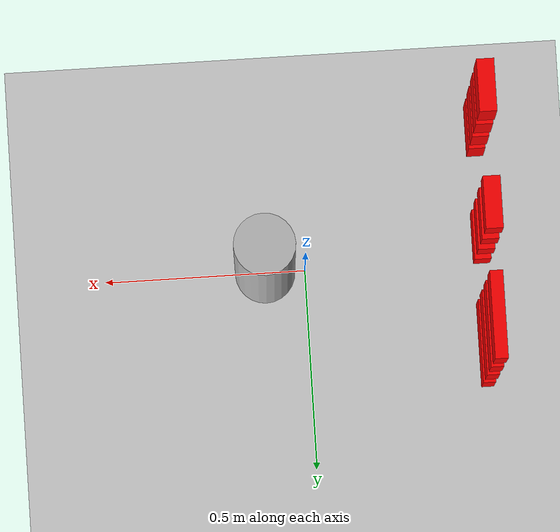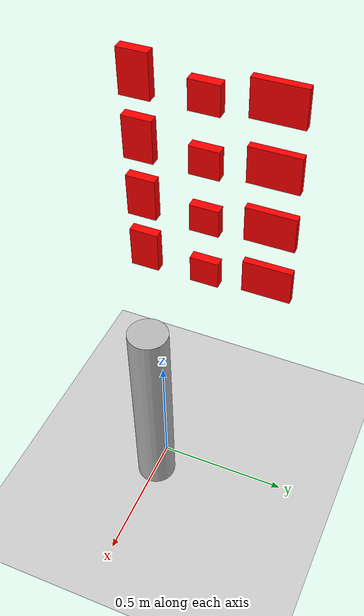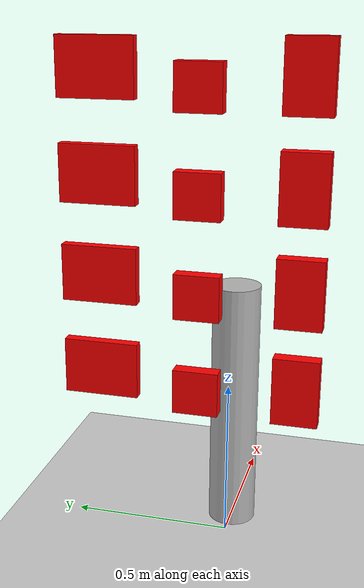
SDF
<?xml version="1.0" ?>
<sdf version="1.4">
  <world name="default">

    <!-- ground plane -->
    <include>
      <uri>model://ground_plane</uri>
    </include>

    <!-- light -->
    <include>
      <uri>model://sun</uri>
    </include>

    <!-- cylinder -->
        <model name="cylinder_base">
        <static>true</static>
          <link name='link'>
            <pose>0.1 0.0 0.4 0 0 0</pose>
            <collision name='collision'>
              <geometry>
                <cylinder>
                  <radius>0.075</radius>
                  <length>0.7</length>
                </cylinder>
              </geometry>
            </collision>
            <visual name='visual'>
              <geometry>
                <cylinder>
                  <radius>0.075</radius>
                  <length>0.8</length>
                </cylinder>
              </geometry>
            </visual>
          </link>
      </model>

    <!-- boxes -->
        <model name="box_11">
        <static>false</static>
          <link name='link'>
            <pose>-0.42 -0.26 1.475 0 0 0</pose>
            <inertial>
              <mass>0.03</mass>
              <inertia>
                <ixx>0.0005</ixx> <ixy>0</ixy> <ixz>0</ixz>
                <iyy>0.0005</iyy> <iyz>0</iyz>
                <izz>0.0005</izz>
              </inertia>
            </inertial>
            <collision name='collision'>
              <geometry>
                <box>
                  <size>0.04 0.12 0.18</size>
                </box>
              </geometry>
              <surface>
                <friction>
                  <ode>
                    <mu>5</mu>
                    <mu2>5</mu2>
                  </ode>
                </friction>
              </surface>
            </collision>
            <visual name='visual'>
              <geometry>
                <box>
                  <size>0.04 0.12 0.18</size>
                </box>
              </geometry>
        <material>
          <ambient>0.7 0.0 0.0 1</ambient>
          <diffuse>1 0.0 0.0 1</diffuse>
          <specular>0.3 0.0 0.0 64</specular>
          <emissive>0.3 0.0 0.0 1</emissive>
        </material>
            </visual>
          </link>
      </model>

        <model name="box_21">
        <static>false</static>
          <link name='link'>
            <pose>-0.42 -0.26 1.215 0 0 0</pose>
            <inertial>
              <mass>0.03</mass>
              <inertia>
                <ixx>0.0005</ixx> <ixy>0</ixy> <ixz>0</ixz>
                <iyy>0.0005</iyy> <iyz>0</iyz>
                <izz>0.0005</izz>
              </inertia>
            </inertial>
            <collision name='collision'>
              <geometry>
                <box>
                  <size>0.04 0.12 0.18</size>
                </box>
              </geometry>
              <surface>
                <friction>
                  <ode>
                    <mu>5</mu>
                    <mu2>5</mu2>
                  </ode>
                </friction>
              </surface>
            </collision>
            <visual name='visual'>
              <geometry>
                <box>
                  <size>0.04 0.12 0.18</size>
                </box>
              </geometry>
        <material>
          <ambient>0.7 0.0 0.0 1</ambient>
          <diffuse>1 0.0 0.0 1</diffuse>
          <specular>0.3 0.0 0.0 64</specular>
          <emissive>0.3 0.0 0.0 1</emissive>
        </material>
            </visual>
          </link>
      </model>

        <model name="box_31">
        <static>false</static>
          <link name='link'>
            <pose>-0.42 -0.26 0.955 0 0 0</pose>
            <inertial>
              <mass>0.03</mass>
              <inertia>
                <ixx>0.0005</ixx> <ixy>0</ixy> <ixz>0</ixz>
                <iyy>0.0005</iyy> <iyz>0</iyz>
                <izz>0.0005</izz>
              </inertia>
            </inertial>
            <collision name='collision'>
              <geometry>
                <box>
                  <size>0.04 0.12 0.18</size>
                </box>
              </geometry>
              <surface>
                <friction>
                  <ode>
                    <mu>5</mu>
                    <mu2>5</mu2>
                  </ode>
                </friction>
              </surface>
            </collision>
            <visual name='visual'>
              <geometry>
                <box>
                  <size>0.04 0.12 0.18</size>
                </box>
              </geometry>
        <material>
          <ambient>0.7 0.0 0.0 1</ambient>
          <diffuse>1 0.0 0.0 1</diffuse>
          <specular>0.3 0.0 0.0 64</specular>
          <emissive>0.3 0.0 0.0 1</emissive>
        </material>
            </visual>
          </link>
      </model>

       <model name="box_41">
        <static>false</static>
          <link name='link'>
            <pose>-0.42 -0.26 0.695 0 0 0</pose>
            <inertial>
              <mass>0.03</mass>
              <inertia>
                <ixx>0.0005</ixx> <ixy>0</ixy> <ixz>0</ixz>
                <iyy>0.0005</iyy> <iyz>0</iyz>
                <izz>0.0005</izz>
              </inertia>
            </inertial>
            <collision name='collision'>
              <geometry>
                <box>
                  <size>0.04 0.12 0.18</size>
                </box>
              </geometry>
              <surface>
                <friction>
                  <ode>
                    <mu>5</mu>
                    <mu2>5</mu2>
                  </ode>
                </friction>
              </surface>
            </collision>
            <visual name='visual'>
              <geometry>
                <box>
                  <size>0.04 0.12 0.18</size>
                </box>
              </geometry>
        <material>
          <ambient>0.7 0.0 0.0 1</ambient>
          <diffuse>1 0.0 0.0 1</diffuse>
          <specular>0.3 0.0 0.0 64</specular>
          <emissive>0.3 0.0 0.0 1</emissive>
        </material>
            </visual>
          </link>
      </model>

       <model name="box_12">
        <static>false</static>
          <link name='link'>
            <pose>-0.42 0.0 1.445 0 0 0</pose>
            <inertial>
              <mass>0.03</mass>
              <inertia>
                <ixx>0.0005</ixx> <ixy>0</ixy> <ixz>0</ixz>
                <iyy>0.0005</iyy> <iyz>0</iyz>
                <izz>0.0005</izz>
              </inertia>
            </inertial>
            <collision name='collision'>
              <geometry>
                <box>
                  <size>0.04 0.12 0.12</size>
                </box>
              </geometry>
              <surface>
                <friction>
                  <ode>
                    <mu>5</mu>
                    <mu2>5</mu2>
                  </ode>
                </friction>
              </surface>
            </collision>
            <visual name='visual'>
              <geometry>
                <box>
                  <size>0.04 0.12 0.12</size>
                </box>
              </geometry>
        <material>
          <ambient>0.7 0.0 0.0 1</ambient>
          <diffuse>1 0.0 0.0 1</diffuse>
          <specular>0.3 0.0 0.0 64</specular>
          <emissive>0.3 0.0 0.0 1</emissive>
        </material>
            </visual>
          </link>
      </model>

       <model name="box_22">
        <static>false</static>
          <link name='link'>
            <pose>-0.42 0.0 1.185 0 0 0</pose>
            <inertial>
              <mass>0.03</mass>
              <inertia>
                <ixx>0.0005</ixx> <ixy>0</ixy> <ixz>0</ixz>
                <iyy>0.0005</iyy> <iyz>0</iyz>
                <izz>0.0005</izz>
              </inertia>
            </inertial>
            <collision name='collision'>
              <geometry>
                <box>
                  <size>0.04 0.12 0.12</size>
                </box>
              </geometry>
              <surface>
                <friction>
                  <ode>
                    <mu>5</mu>
                    <mu2>5</mu2>
                  </ode>
                </friction>
              </surface>
            </collision>
            <visual name='visual'>
              <geometry>
                <box>
                  <size>0.04 0.12 0.12</size>
                </box>
              </geometry>
        <material>
          <ambient>0.7 0.0 0.0 1</ambient>
          <diffuse>1 0.0 0.0 1</diffuse>
          <specular>0.3 0.0 0.0 64</specular>
          <emissive>0.3 0.0 0.0 1</emissive>
        </material>
            </visual>
          </link>
      </model>

       <model name="box_32">
        <static>false</static>
          <link name='link'>
            <pose>-0.42 0.0 0.925 0 0 0</pose>
            <inertial>
              <mass>0.03</mass>
              <inertia>
                <ixx>0.0005</ixx> <ixy>0</ixy> <ixz>0</ixz>
                <iyy>0.0005</iyy> <iyz>0</iyz>
                <izz>0.0005</izz>
              </inertia>
            </inertial>
            <collision name='collision'>
              <geometry>
                <box>
                  <size>0.04 0.12 0.12</size>
                </box>
              </geometry>
              <surface>
                <friction>
                  <ode>
                    <mu>5</mu>
                    <mu2>5</mu2>
                  </ode>
                </friction>
              </surface>
            </collision>
            <visual name='visual'>
              <geometry>
                <box>
                  <size>0.04 0.12 0.12</size>
                </box>
              </geometry>
        <material>
          <ambient>0.7 0.0 0.0 1</ambient>
          <diffuse>1 0.0 0.0 1</diffuse>
          <specular>0.3 0.0 0.0 64</specular>
          <emissive>0.3 0.0 0.0 1</emissive>
        </material>
            </visual>
          </link>
      </model>

       <model name="box_42">
        <static>false</static>
          <link name='link'>
            <pose>-0.42 0.0 0.665 0 0 0</pose>
            <inertial>
              <mass>0.03</mass>
              <inertia>
                <ixx>0.0005</ixx> <ixy>0</ixy> <ixz>0</ixz>
                <iyy>0.0005</iyy> <iyz>0</iyz>
                <izz>0.0005</izz>
              </inertia>
            </inertial>
            <collision name='collision'>
              <geometry>
                <box>
                  <size>0.04 0.12 0.12</size>
                </box>
              </geometry>
              <surface>
                <friction>
                  <ode>
                    <mu>5</mu>
                    <mu2>5</mu2>
                  </ode>
                </friction>
              </surface>
            </collision>
            <visual name='visual'>
              <geometry>
                <box>
                  <size>0.04 0.12 0.12</size>
                </box>
              </geometry>
        <material>
          <ambient>0.7 0.0 0.0 1</ambient>
          <diffuse>1 0.0 0.0 1</diffuse>
          <specular>0.3 0.0 0.0 64</specular>
          <emissive>0.3 0.0 0.0 1</emissive>
        </material>
            </visual>
          </link>
      </model>

       <model name="box_13">
        <static>false</static>
          <link name='link'>
            <pose>-0.415 0.26 1.485 0 0 0</pose>
            <inertial>
              <mass>0.03</mass>
              <inertia>
                <ixx>0.0005</ixx> <ixy>0</ixy> <ixz>0</ixz>
                <iyy>0.0005</iyy> <iyz>0</iyz>
                <izz>0.0005</izz>
              </inertia>
            </inertial>
            <collision name='collision'>
              <geometry>
                <box>
                  <size>0.03 0.2 0.15</size>
                </box>
              </geometry>
              <surface>
                <friction>
                  <ode>
                    <mu>5</mu>
                    <mu2>5</mu2>
                  </ode>
                </friction>
              </surface>
            </collision>
            <visual name='visual'>
              <geometry>
                <box>
                  <size>0.03 0.2 0.15</size>
                </box>
              </geometry>
        <material>
          <ambient>0.7 0.0 0.0 1</ambient>
          <diffuse>1 0.0 0.0 1</diffuse>
          <specular>0.3 0.0 0.0 64</specular>
          <emissive>0.3 0.0 0.0 1</emissive>
        </material>
            </visual>
          </link>
      </model>

       <model name="box_23">
        <static>false</static>
          <link name='link'>
            <pose>-0.415 0.26 1.225 0 0 0</pose>
            <inertial>
              <mass>0.03</mass>
              <inertia>
                <ixx>0.0005</ixx> <ixy>0</ixy> <ixz>0</ixz>
                <iyy>0.0005</iyy> <iyz>0</iyz>
                <izz>0.0005</izz>
              </inertia>
            </inertial>
            <collision name='collision'>
              <geometry>
                <box>
                  <size>0.03 0.2 0.15</size>
                </box>
              </geometry>
              <surface>
                <friction>
                  <ode>
                    <mu>5</mu>
                    <mu2>5</mu2>
                  </ode>
                </friction>
              </surface>
            </collision>
            <visual name='visual'>
              <geometry>
                <box>
                  <size>0.03 0.2 0.15</size>
                </box>
              </geometry>
        <material>
          <ambient>0.7 0.0 0.0 1</ambient>
          <diffuse>1 0.0 0.0 1</diffuse>
          <specular>0.3 0.0 0.0 64</specular>
          <emissive>0.3 0.0 0.0 1</emissive>
        </material>
            </visual>
          </link>
      </model>

       <model name="box_33">
        <static>false</static>
          <link name='link'>
            <pose>-0.415 0.26 0.965 0 0 0</pose>
            <inertial>
              <mass>0.03</mass>
              <inertia>
                <ixx>0.0005</ixx> <ixy>0</ixy> <ixz>0</ixz>
                <iyy>0.0005</iyy> <iyz>0</iyz>
                <izz>0.0005</izz>
              </inertia>
            </inertial>
            <collision name='collision'>
              <geometry>
                <box>
                  <size>0.03 0.2 0.15</size>
                </box>
              </geometry>
              <surface>
                <friction>
                  <ode>
                    <mu>5</mu>
                    <mu2>5</mu2>
                  </ode>
                </friction>
              </surface>
            </collision>
            <visual name='visual'>
              <geometry>
                <box>
                  <size>0.03 0.2 0.15</size>
                </box>
              </geometry>
        <material>
          <ambient>0.7 0.0 0.0 1</ambient>
          <diffuse>1 0.0 0.0 1</diffuse>
          <specular>0.3 0.0 0.0 64</specular>
          <emissive>0.3 0.0 0.0 1</emissive>
        </material>
            </visual>
          </link>
      </model>

       <model name="box_43">
        <static>false</static>
          <link name='link'>
            <pose>-0.415 0.26 0.705 0 0 0</pose>
            <inertial>
              <mass>0.03</mass>
              <inertia>
                <ixx>0.0005</ixx> <ixy>0</ixy> <ixz>0</ixz>
                <iyy>0.0005</iyy> <iyz>0</iyz>
                <izz>0.0005</izz>
              </inertia>
            </inertial>
            <collision name='collision'>
              <geometry>
                <box>
                  <size>0.03 0.2 0.15</size>
                </box>
              </geometry>
              <surface>
                <friction>
                  <ode>
                    <mu>5</mu>
                    <mu2>5</mu2>
                  </ode>
                </friction>
              </surface>
            </collision>
            <visual name='visual'>
              <geometry>
                <box>
                  <size>0.03 0.2 0.15</size>
                </box>
              </geometry>
        <material>
          <ambient>0.7 0.0 0.0 1</ambient>
          <diffuse>1 0.0 0.0 1</diffuse>
          <specular>0.3 0.0 0.0 64</specular>
          <emissive>0.3 0.0 0.0 1</emissive>
        </material>
            </visual>
          </link>
      </model>

  </world>
</sdf>
